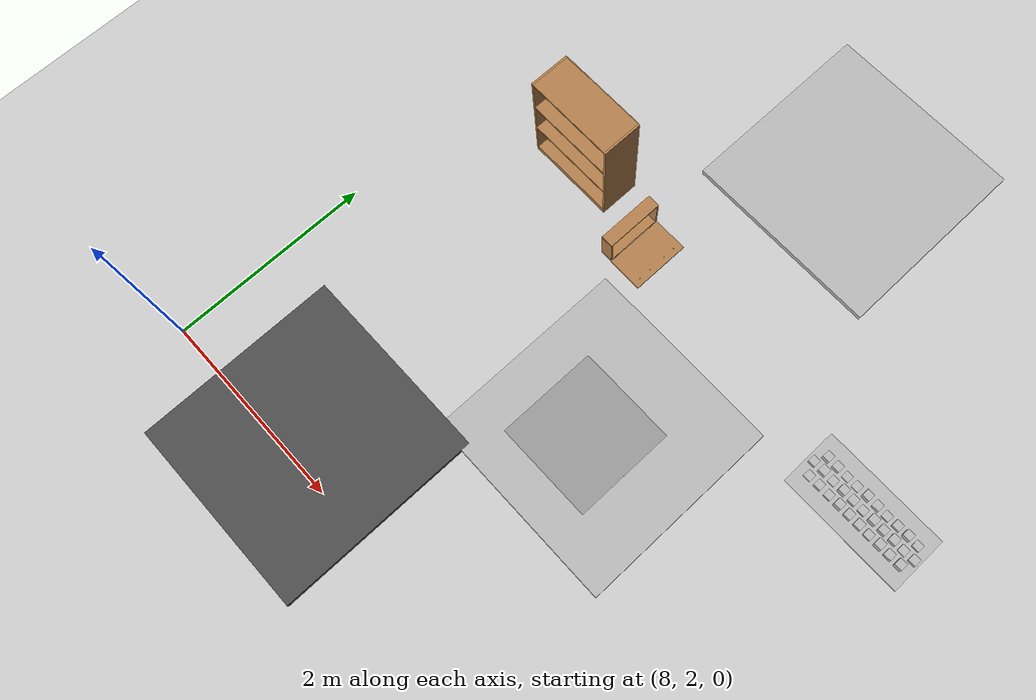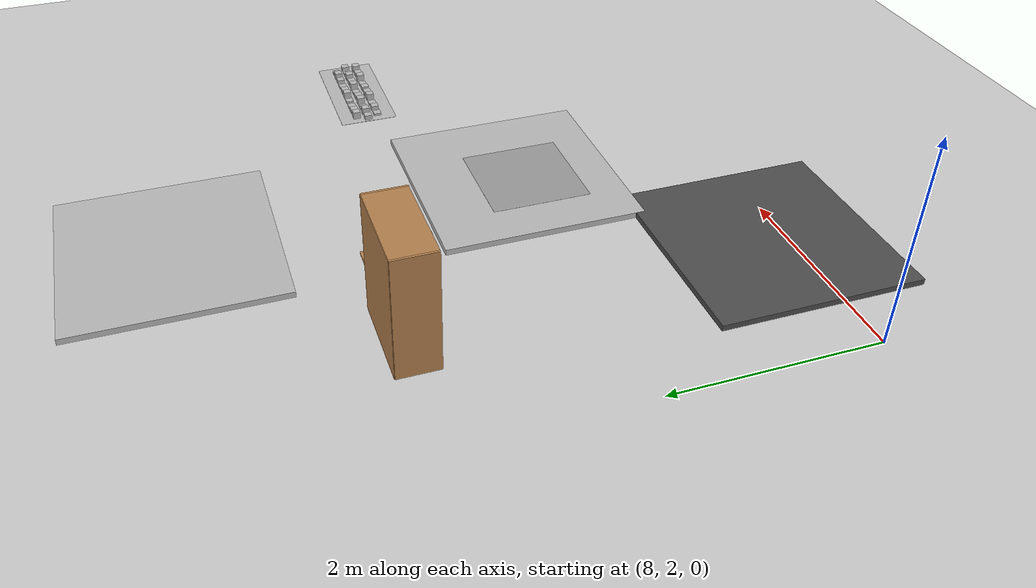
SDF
<sdf version="1.6">
 <world name="default">
  <model name="texture4_0">
   <static>1</static>
   <link name="link">
    <collision name="collision"><geometry><box><size>2 2 0.1</size></box></geometry></collision>
    <visual name="visual">
     <cast_shadows>0</cast_shadows>
     <geometry><box><size>2 2 0.1</size></box></geometry>
     <material>
      <script>
       <uri>model://texture4/materials/scripts</uri>
       <uri>model://texture4/materials/textures</uri>
       <name>vrc/texture4</name>
      </script>
     </material>
    </visual>
   </link>
   <pose>11.2423 4.1124 0 0 -0 0</pose>
  </model>
  <model name="texture1_2">
   <static>1</static>
   <link name="link">
    <collision name="collision"><geometry><box><size>2 2 0.1</size></box></geometry></collision>
    <visual name="visual">
     <cast_shadows>0</cast_shadows>
     <geometry><box><size>2 2 0.1</size></box></geometry>
     <material>
      <script>
       <uri>model://texture1/materials/scripts</uri>
       <uri>model://texture1/materials/textures</uri>
       <name>vrc/texture1</name>
      </script>
     </material>
    </visual>
   </link>
   <pose>11.0808 7.52286 0 0 -0 0</pose>
  </model>
  <model name="unit_box_0">
   <pose>11.1679 3.99809 0.050264 0 -0 0</pose>
   <link name="link">
    <inertial>
     <mass>1</mass>
     <inertia>
      <ixx>0.166667</ixx>
      <ixy>0</ixy>
      <ixz>0</ixz>
      <iyy>0.166667</iyy>
      <iyz>0</iyz>
      <izz>0.166667</izz>
     </inertia>
    </inertial>
    <collision name="collision"><geometry><box><size>1 1 0.000528398</size></box></geometry></collision>
    <visual name="visual">
     <geometry><box><size>1 1 0.000528398</size></box></geometry>
     <material>
      <script><name>Gazebo/Grey</name><uri>file://media/materials/scripts/gazebo.material</uri></script>
     </material>
    </visual>
   </link>
  </model>
  <model name="ground_plane">
   <static>1</static>
   <link name="link">
    <collision name="collision">
     <geometry><plane><normal>0 0 1</normal><size>100 100</size></plane></geometry>
     <surface><friction><ode><mu>100</mu><mu2>50</mu2></ode></friction></surface>
    </collision>
    <visual name="visual">
     <cast_shadows>0</cast_shadows>
     <geometry><plane><normal>0 0 1</normal><size>100 100</size></plane></geometry>
     <material>
      <script><uri>file://media/materials/scripts/gazebo.material</uri><name>Gazebo/Grey</name></script>
     </material>
    </visual>
   </link>
   <pose>-0.49205 0.443924 0 0 -0 0</pose>
  </model>
  <model name="frc2016_roughterrain">
   <static>1</static>
   <link name="link">
    <visual name="platform">
     <pose>0 0 0.08269 0 -0 0</pose>
     <geometry><box><size>1.27 0.5969 0.003175</size></box></geometry>
    </visual>
    <collision name="platform">
     <pose>0 0 0.08269 0 -0 0</pose>
     <geometry><box><size>1.27 0.5969 0.003175</size></box></geometry>
    </collision>
    <visual name="row1_block1_sm">
     <pose>0.51435 0.1143 0.09698 0 -0 0</pose>
     <geometry><box><size>0.0762 0.0762 0.0254</size></box></geometry>
    </visual>
    <collision name="row1_block1_sm">
     <pose>0.51435 0.1143 0.09698 0 -0 0</pose>
     <geometry><box><size>0.0762 0.0762 0.0254</size></box></geometry>
    </collision>
    <visual name="row1_block2_lg">
     <pose>0.40005 0.1143 0.12238 0 -0 0</pose>
     <geometry><box><size>0.0762 0.0762 0.0762</size></box></geometry>
    </visual>
    <collision name="row1_block2_lg">
     <pose>0.40005 0.1143 0.12238 0 -0 0</pose>
     <geometry><box><size>0.0762 0.0762 0.0762</size></box></geometry>
    </collision>
    <visual name="row1_block3_md">
     <pose>0.28575 0.1143 0.10968 0 -0 0</pose>
     <geometry><box><size>0.0762 0.0762 0.0508</size></box></geometry>
    </visual>
    <collision name="row1_block3_md">
     <pose>0.28575 0.1143 0.10968 0 -0 0</pose>
     <geometry><box><size>0.0762 0.0762 0.0508</size></box></geometry>
    </collision>
    <visual name="row1_block4_sm">
     <pose>0.17145 0.1143 0.09698 0 -0 0</pose>
     <geometry><box><size>0.0762 0.0762 0.0254</size></box></geometry>
    </visual>
    <collision name="row1_block4_sm">
     <pose>0.17145 0.1143 0.09698 0 -0 0</pose>
     <geometry><box><size>0.0762 0.0762 0.0254</size></box></geometry>
    </collision>
    <visual name="row1_block5_md">
     <pose>0.05715 0.1143 0.10968 0 -0 0</pose>
     <geometry><box><size>0.0762 0.0762 0.0508</size></box></geometry>
    </visual>
    <collision name="row1_block5_md">
     <pose>0.05715 0.1143 0.10968 0 -0 0</pose>
     <geometry><box><size>0.0762 0.0762 0.0508</size></box></geometry>
    </collision>
    <visual name="row1_block6_lg">
     <pose>-0.05715 0.1143 0.12238 0 -0 0</pose>
     <geometry><box><size>0.0762 0.0762 0.0762</size></box></geometry>
    </visual>
    <collision name="row1_block6_lg">
     <pose>-0.05715 0.1143 0.12238 0 -0 0</pose>
     <geometry><box><size>0.0762 0.0762 0.0762</size></box></geometry>
    </collision>
    <visual name="row1_block7_sm">
     <pose>-0.17145 0.1143 0.09698 0 -0 0</pose>
     <geometry><box><size>0.0762 0.0762 0.0254</size></box></geometry>
    </visual>
    <collision name="row1_block7_sm">
     <pose>-0.17145 0.1143 0.09698 0 -0 0</pose>
     <geometry><box><size>0.0762 0.0762 0.0254</size></box></geometry>
    </collision>
    <visual name="row1_block8_sm">
     <pose>-0.28575 0.1143 0.09698 0 -0 0</pose>
     <geometry><box><size>0.0762 0.0762 0.0254</size></box></geometry>
    </visual>
    <collision name="row1_block8_sm">
     <pose>-0.28575 0.1143 0.09698 0 -0 0</pose>
     <geometry><box><size>0.0762 0.0762 0.0254</size></box></geometry>
    </collision>
    <visual name="row1_block9_md">
     <pose>-0.40005 0.1143 0.10968 0 -0 0</pose>
     <geometry><box><size>0.0762 0.0762 0.0508</size></box></geometry>
    </visual>
    <collision name="row1_block9_md">
     <pose>-0.40005 0.1143 0.10968 0 -0 0</pose>
     <geometry><box><size>0.0762 0.0762 0.0508</size></box></geometry>
    </collision>
    <visual name="row1_block10_lg">
     <pose>-0.51435 0.1143 0.12238 0 -0 0</pose>
     <geometry><box><size>0.0762 0.0762 0.0762</size></box></geometry>
    </visual>
    <collision name="row1_block10_lg">
     <pose>-0.51435 0.1143 0.12238 0 -0 0</pose>
     <geometry><box><size>0.0762 0.0762 0.0762</size></box></geometry>
    </collision>
    <visual name="row2_block1_md">
     <pose>0.5715 0 0.10968 0 -0 0</pose>
     <geometry><box><size>0.0762 0.0762 0.0508</size></box></geometry>
    </visual>
    <collision name="row2_block1_md">
     <pose>0.5715 0 0.10968 0 -0 0</pose>
     <geometry><box><size>0.0762 0.0762 0.0508</size></box></geometry>
    </collision>
    <visual name="row2_block2_sm">
     <pose>0.4572 0 0.09698 0 -0 0</pose>
     <geometry><box><size>0.0762 0.0762 0.0254</size></box></geometry>
    </visual>
    <collision name="row2_block2_sm">
     <pose>0.4572 0 0.09698 0 -0 0</pose>
     <geometry><box><size>0.0762 0.0762 0.0254</size></box></geometry>
    </collision>
    <visual name="row2_block3_lg">
     <pose>0.3429 0 0.12238 0 -0 0</pose>
     <geometry><box><size>0.0762 0.0762 0.0762</size></box></geometry>
    </visual>
    <collision name="row2_block3_lg">
     <pose>0.3429 0 0.12238 0 -0 0</pose>
     <geometry><box><size>0.0762 0.0762 0.0762</size></box></geometry>
    </collision>
    <visual name="row2_block4_md">
     <pose>0.2286 0 0.10968 0 -0 0</pose>
     <geometry><box><size>0.0762 0.0762 0.0508</size></box></geometry>
    </visual>
    <collision name="row2_block4_md">
     <pose>0.2286 0 0.10968 0 -0 0</pose>
     <geometry><box><size>0.0762 0.0762 0.0508</size></box></geometry>
    </collision>
    <visual name="row2_block5_lg">
     <pose>0.1143 0 0.12238 0 -0 0</pose>
     <geometry><box><size>0.0762 0.0762 0.0762</size></box></geometry>
    </visual>
    <collision name="row2_block5_lg">
     <pose>0.1143 0 0.12238 0 -0 0</pose>
     <geometry><box><size>0.0762 0.0762 0.0762</size></box></geometry>
    </collision>
    <visual name="row2_block6_sm">
     <pose>0 0 0.09698 0 -0 0</pose>
     <geometry><box><size>0.0762 0.0762 0.0254</size></box></geometry>
    </visual>
    <collision name="row2_block6_sm">
     <pose>0 0 0.09698 0 -0 0</pose>
     <geometry><box><size>0.0762 0.0762 0.0254</size></box></geometry>
    </collision>
    <visual name="row2_block7_md">
     <pose>-0.1143 0 0.10968 0 -0 0</pose>
     <geometry><box><size>0.0762 0.0762 0.0508</size></box></geometry>
    </visual>
    <collision name="row2_block7_md">
     <pose>-0.1143 0 0.10968 0 -0 0</pose>
     <geometry><box><size>0.0762 0.0762 0.0508</size></box></geometry>
    </collision>
    <visual name="row2_block8_lg">
     <pose>-0.2286 0 0.12238 0 -0 0</pose>
     <geometry><box><size>0.0762 0.0762 0.0762</size></box></geometry>
    </visual>
    <collision name="row2_block8_lg">
     <pose>-0.2286 0 0.12238 0 -0 0</pose>
     <geometry><box><size>0.0762 0.0762 0.0762</size></box></geometry>
    </collision>
    <visual name="row2_block9_sm">
     <pose>-0.3429 0 0.09698 0 -0 0</pose>
     <geometry><box><size>0.0762 0.0762 0.0254</size></box></geometry>
    </visual>
    <collision name="row2_block9_sm">
     <pose>-0.3429 0 0.09698 0 -0 0</pose>
     <geometry><box><size>0.0762 0.0762 0.0254</size></box></geometry>
    </collision>
    <visual name="row2_block10_lg">
     <pose>-0.4572 0 0.12238 0 -0 0</pose>
     <geometry><box><size>0.0762 0.0762 0.0762</size></box></geometry>
    </visual>
    <collision name="row2_block10_lg">
     <pose>-0.4572 0 0.12238 0 -0 0</pose>
     <geometry><box><size>0.0762 0.0762 0.0762</size></box></geometry>
    </collision>
    <visual name="row2_block11_md">
     <pose>-0.5715 0 0.10968 0 -0 0</pose>
     <geometry><box><size>0.0762 0.0762 0.0508</size></box></geometry>
    </visual>
    <collision name="row2_block11_md">
     <pose>-0.5715 0 0.10968 0 -0 0</pose>
     <geometry><box><size>0.0762 0.0762 0.0508</size></box></geometry>
    </collision>
    <visual name="row3_block1_lg">
     <pose>0.51435 -0.1143 0.12238 0 -0 0</pose>
     <geometry><box><size>0.0762 0.0762 0.0762</size></box></geometry>
    </visual>
    <collision name="row3_block1_lg">
     <pose>0.51435 -0.1143 0.12238 0 -0 0</pose>
     <geometry><box><size>0.0762 0.0762 0.0762</size></box></geometry>
    </collision>
    <visual name="row3_block2_md">
     <pose>0.40005 -0.1143 0.10968 0 -0 0</pose>
     <geometry><box><size>0.0762 0.0762 0.0508</size></box></geometry>
    </visual>
    <collision name="row3_block2_md">
     <pose>0.40005 -0.1143 0.10968 0 -0 0</pose>
     <geometry><box><size>0.0762 0.0762 0.0508</size></box></geometry>
    </collision>
    <visual name="row3_block3_lg">
     <pose>0.28575 -0.1143 0.12238 0 -0 0</pose>
     <geometry><box><size>0.0762 0.0762 0.0762</size></box></geometry>
    </visual>
    <collision name="row3_block3_lg">
     <pose>0.28575 -0.1143 0.12238 0 -0 0</pose>
     <geometry><box><size>0.0762 0.0762 0.0762</size></box></geometry>
    </collision>
    <visual name="row3_block4_sm">
     <pose>0.17145 -0.1143 0.09698 0 -0 0</pose>
     <geometry><box><size>0.0762 0.0762 0.0254</size></box></geometry>
    </visual>
    <collision name="row3_block4_sm">
     <pose>0.17145 -0.1143 0.09698 0 -0 0</pose>
     <geometry><box><size>0.0762 0.0762 0.0254</size></box></geometry>
    </collision>
    <visual name="row3_block5_md">
     <pose>0.05715 -0.1143 0.10968 0 -0 0</pose>
     <geometry><box><size>0.0762 0.0762 0.0508</size></box></geometry>
    </visual>
    <collision name="row3_block5_md">
     <pose>0.05715 -0.1143 0.10968 0 -0 0</pose>
     <geometry><box><size>0.0762 0.0762 0.0508</size></box></geometry>
    </collision>
    <visual name="row3_block6_md">
     <pose>-0.05715 -0.1143 0.10968 0 -0 0</pose>
     <geometry><box><size>0.0762 0.0762 0.0508</size></box></geometry>
    </visual>
    <collision name="row3_block6_md">
     <pose>-0.05715 -0.1143 0.10968 0 -0 0</pose>
     <geometry><box><size>0.0762 0.0762 0.0508</size></box></geometry>
    </collision>
    <visual name="row3_block7_lg">
     <pose>-0.17145 -0.1143 0.12238 0 -0 0</pose>
     <geometry><box><size>0.0762 0.0762 0.0762</size></box></geometry>
    </visual>
    <collision name="row3_block7_lg">
     <pose>-0.17145 -0.1143 0.12238 0 -0 0</pose>
     <geometry><box><size>0.0762 0.0762 0.0762</size></box></geometry>
    </collision>
    <visual name="row3_block8_sm">
     <pose>-0.28575 -0.1143 0.09698 0 -0 0</pose>
     <geometry><box><size>0.0762 0.0762 0.0254</size></box></geometry>
    </visual>
    <collision name="row3_block8_sm">
     <pose>-0.28575 -0.1143 0.09698 0 -0 0</pose>
     <geometry><box><size>0.0762 0.0762 0.0254</size></box></geometry>
    </collision>
    <visual name="row3_block9_md">
     <pose>-0.40005 -0.1143 0.10968 0 -0 0</pose>
     <geometry><box><size>0.0762 0.0762 0.0508</size></box></geometry>
    </visual>
    <collision name="row3_block9_md">
     <pose>-0.40005 -0.1143 0.10968 0 -0 0</pose>
     <geometry><box><size>0.0762 0.0762 0.0508</size></box></geometry>
    </collision>
    <visual name="row3_block10_sm">
     <pose>-0.51435 -0.1143 0.09698 0 -0 0</pose>
     <geometry><box><size>0.0762 0.0762 0.0254</size></box></geometry>
    </visual>
    <collision name="row3_block10_sm">
     <pose>-0.51435 -0.1143 0.09698 0 -0 0</pose>
     <geometry><box><size>0.0762 0.0762 0.0254</size></box></geometry>
    </collision>
   </link>
   <pose>13.2662 5.24814 0 0 -0 0</pose>
  </model>
  <model name="asphalt_plane">
   <static>1</static>
   <link name="link">
    <collision name="collision"><geometry><box><size>2 2 0.1</size></box></geometry></collision>
    <visual name="visual">
     <cast_shadows>0</cast_shadows>
     <geometry><box><size>2 2 0.1</size></box></geometry>
     <material>
      <script>
       <uri>model://texture3/materials/scripts</uri>
       <uri>model://texture3/materials/textures</uri>
       <name>vrc/asphalt</name>
      </script>
     </material>
    </visual>
   </link>
   <pose>9.54454 2.20363 0 0 -0 0</pose>
  </model>
  <model name="wooden_case_0">
   <link name="base">
    <pose>0 0 0.024 0 -0 0</pose>
    <inertial>
     <pose>-0.022184 0 0.171592 0 -0 0</pose>
     <mass>3.96264</mass>
     <inertia>
      <ixx>0.213536</ixx>
      <ixy>0</ixy>
      <ixz>0.000779377</ixz>
      <iyy>0.0708943</iyy>
      <iyz>0</iyz>
      <izz>0.154604</izz>
     </inertia>
    </inertial>
    <collision name="collision_back">
     <pose>-0.053975 0 0.1778 0 -0 0</pose>
     <geometry><box><size>0.01905 0.5461 0.3175</size></box></geometry>
     <surface>
      <contact>
       <poissons_ratio>0.347</poissons_ratio>
       <elastic_modulus>8.8e+09</elastic_modulus>
       <ode><kp>100000</kp><kd>100</kd><max_vel>100</max_vel><min_depth>0.001</min_depth></ode>
      </contact>
      <friction>
       <torsional>
        <coefficient>1</coefficient>
        <use_patch_radius>0</use_patch_radius>
        <surface_radius>0.01</surface_radius>
       </torsional>
      </friction>
     </surface>
    </collision>
    <visual name="visual_back">
     <pose>-0.053975 0 0.1778 0 -0 0</pose>
     <geometry><box><size>0.01905 0.5461 0.3175</size></box></geometry>
     <material>
      <script><uri>file://media/materials/scripts/gazebo.material</uri><name>Gazebo/Wood</name></script>
     </material>
    </visual>
    <collision name="collision_bottom">
     <pose>0 0 0.009525 0 -0 0</pose>
     <geometry><box><size>0.127 0.5842 0.01905</size></box></geometry>
     <surface>
      <contact>
       <poissons_ratio>0.347</poissons_ratio>
       <elastic_modulus>8.8e+09</elastic_modulus>
       <ode><kp>100000</kp><kd>100</kd><max_vel>100</max_vel><min_depth>0.001</min_depth></ode>
      </contact>
      <friction>
       <torsional>
        <coefficient>1</coefficient>
        <use_patch_radius>0</use_patch_radius>
        <surface_radius>0.01</surface_radius>
       </torsional>
      </friction>
     </surface>
    </collision>
    <visual name="visual_bottom">
     <pose>0 0 0.009525 0 -0 0</pose>
     <geometry><box><size>0.127 0.5842 0.01905</size></box></geometry>
     <material>
      <script><uri>file://media/materials/scripts/gazebo.material</uri><name>Gazebo/Wood</name></script>
     </material>
    </visual>
    <collision name="collision_top">
     <pose>0 0 0.346075 0 -0 0</pose>
     <geometry><box><size>0.127 0.5842 0.01905</size></box></geometry>
     <surface>
      <contact>
       <poissons_ratio>0.347</poissons_ratio>
       <elastic_modulus>8.8e+09</elastic_modulus>
       <ode><kp>100000</kp><kd>100</kd><max_vel>100</max_vel><min_depth>0.001</min_depth></ode>
      </contact>
      <friction>
       <torsional>
        <coefficient>1</coefficient>
        <use_patch_radius>0</use_patch_radius>
        <surface_radius>0.01</surface_radius>
       </torsional>
      </friction>
     </surface>
    </collision>
    <visual name="visual_top">
     <pose>0 0 0.346075 0 -0 0</pose>
     <geometry><box><size>0.127 0.5842 0.01905</size></box></geometry>
     <material>
      <script><uri>file://media/materials/scripts/gazebo.material</uri><name>Gazebo/Wood</name></script>
     </material>
    </visual>
    <collision name="collision_left">
     <pose>0 -0.282575 0.1778 0 -0 0</pose>
     <geometry><box><size>0.127 0.01905 0.3175</size></box></geometry>
     <surface>
      <contact>
       <poissons_ratio>0.347</poissons_ratio>
       <elastic_modulus>8.8e+09</elastic_modulus>
       <ode><kp>100000</kp><kd>100</kd><max_vel>100</max_vel><min_depth>0.001</min_depth></ode>
      </contact>
      <friction>
       <torsional>
        <coefficient>1</coefficient>
        <use_patch_radius>0</use_patch_radius>
        <surface_radius>0.01</surface_radius>
       </torsional>
      </friction>
     </surface>
    </collision>
    <visual name="visual_left">
     <pose>0 -0.282575 0.1778 0 -0 0</pose>
     <geometry><box><size>0.127 0.01905 0.3175</size></box></geometry>
     <material>
      <script><uri>file://media/materials/scripts/gazebo.material</uri><name>Gazebo/Wood</name></script>
     </material>
    </visual>
    <collision name="collision_right">
     <pose>0 0.282575 0.1778 0 -0 0</pose>
     <geometry><box><size>0.127 0.01905 0.3175</size></box></geometry>
     <surface>
      <contact>
       <poissons_ratio>0.347</poissons_ratio>
       <elastic_modulus>8.8e+09</elastic_modulus>
       <ode><kp>100000</kp><kd>100</kd><max_vel>100</max_vel><min_depth>0.001</min_depth></ode>
      </contact>
      <friction>
       <torsional>
        <coefficient>1</coefficient>
        <use_patch_radius>0</use_patch_radius>
        <surface_radius>0.01</surface_radius>
       </torsional>
      </friction>
     </surface>
    </collision>
    <visual name="visual_right">
     <pose>0 0.282575 0.1778 0 -0 0</pose>
     <geometry><box><size>0.127 0.01905 0.3175</size></box></geometry>
     <material>
      <script><uri>file://media/materials/scripts/gazebo.material</uri><name>Gazebo/Wood</name></script>
     </material>
    </visual>
    <collision name="collision_block_left">
     <pose>0.0095 -0.2151 -0.012 0 -0 0</pose>
     <geometry><box><size>0.108 0.05 0.024</size></box></geometry>
     <surface>
      <contact>
       <poissons_ratio>0.347</poissons_ratio>
       <elastic_modulus>8.8e+09</elastic_modulus>
       <ode><kp>100000</kp><kd>100</kd><max_vel>100</max_vel><min_depth>0.001</min_depth></ode>
      </contact>
      <friction>
       <torsional>
        <coefficient>1</coefficient>
        <use_patch_radius>0</use_patch_radius>
        <surface_radius>0.01</surface_radius>
       </torsional>
      </friction>
     </surface>
    </collision>
    <visual name="visual_block_left">
     <pose>0.0095 -0.2151 -0.012 0 -0 0</pose>
     <geometry><box><size>0.108 0.05 0.024</size></box></geometry>
     <material>
      <script><uri>file://media/materials/scripts/gazebo.material</uri><name>Gazebo/Wood</name></script>
     </material>
    </visual>
    <collision name="collision_block_right">
     <pose>0.0095 0.2151 -0.012 0 -0 0</pose>
     <geometry><box><size>0.108 0.05 0.024</size></box></geometry>
     <surface>
      <contact>
       <poissons_ratio>0.347</poissons_ratio>
       <elastic_modulus>8.8e+09</elastic_modulus>
       <ode><kp>100000</kp><kd>100</kd><max_vel>100</max_vel><min_depth>0.001</min_depth></ode>
      </contact>
      <friction>
       <torsional>
        <coefficient>1</coefficient>
        <use_patch_radius>0</use_patch_radius>
        <surface_radius>0.01</surface_radius>
       </torsional>
      </friction>
     </surface>
    </collision>
    <visual name="visual_block_right">
     <pose>0.0095 0.2151 -0.012 0 -0 0</pose>
     <geometry><box><size>0.108 0.05 0.024</size></box></geometry>
     <material>
      <script><uri>file://media/materials/scripts/gazebo.material</uri><name>Gazebo/Wood</name></script>
     </material>
    </visual>
   </link>
   <link name="lid">
    <pose>0.243775 0 0.009525 0 -0 0</pose>
    <inertial>
     <mass>1.97874</mass>
     <inertia>
      <ixx>0.0563367</ixx>
      <ixy>0</ixy>
      <ixz>0</ixz>
      <iyy>0.020911</iyy>
      <iyz>0</iyz>
      <izz>0.0771281</izz>
     </inertia>
    </inertial>
    <collision name="collision">
     <geometry><box><size>0.3556 0.5842 0.01905</size></box></geometry>
     <surface>
      <contact>
       <poissons_ratio>0.347</poissons_ratio>
       <elastic_modulus>8.8e+09</elastic_modulus>
       <ode><kp>100000</kp><kd>100</kd><max_vel>100</max_vel><min_depth>0.001</min_depth></ode>
      </contact>
      <friction>
       <torsional>
        <coefficient>1</coefficient>
        <use_patch_radius>0</use_patch_radius>
        <surface_radius>0.01</surface_radius>
       </torsional>
      </friction>
     </surface>
    </collision>
    <visual name="visual">
     <geometry><box><size>0.3556 0.5842 0.01905</size></box></geometry>
     <material>
      <script><uri>file://media/materials/scripts/gazebo.material</uri><name>Gazebo/Wood</name></script>
     </material>
    </visual>
    <visual name="tee_nut_1">
     <pose>0.122 -0.216 0 0 -0 0</pose>
     <geometry><cylinder><radius>0.00635</radius><length>0.0192405</length></cylinder></geometry>
     <material>
      <script><uri>file://media/materials/scripts/gazebo.material</uri><name>Gazebo/Grey</name></script>
     </material>
    </visual>
    <visual name="tee_nut_2">
     <pose>0.122 -0.088 0 0 -0 0</pose>
     <geometry><cylinder><radius>0.00635</radius><length>0.0192405</length></cylinder></geometry>
     <material>
      <script><uri>file://media/materials/scripts/gazebo.material</uri><name>Gazebo/Grey</name></script>
     </material>
    </visual>
    <visual name="tee_nut_3">
     <pose>0.122 0.088 0 0 -0 0</pose>
     <geometry><cylinder><radius>0.00635</radius><length>0.0192405</length></cylinder></geometry>
     <material>
      <script><uri>file://media/materials/scripts/gazebo.material</uri><name>Gazebo/Grey</name></script>
     </material>
    </visual>
    <visual name="tee_nut_4">
     <pose>0.122 0.216 0 0 -0 0</pose>
     <geometry><cylinder><radius>0.00635</radius><length>0.0192405</length></cylinder></geometry>
     <material>
      <script><uri>file://media/materials/scripts/gazebo.material</uri><name>Gazebo/Grey</name></script>
     </material>
    </visual>
   </link>
   <joint name="lid_hinge" type="revolute">
    <pose>-0.1778 0 0.01905 0 -0 0</pose>
    <parent>base</parent>
    <child>lid</child>
    <axis>
     <xyz>0 1 0</xyz>
     <limit><upper>0.523599</upper><lower>-1.5708</lower></limit>
     <use_parent_model_frame>0</use_parent_model_frame>
     <dynamics><spring_reference>0</spring_reference><spring_stiffness>0</spring_stiffness></dynamics>
    </axis>
   </joint>
   <pose>10.0839 5.56428 -0.001058 0 -0.000456 0</pose>
  </model>
  <model name="bookshelf">
   <static>1</static>
   <link name="link">
    <inertial><mass>1</mass></inertial>
    <collision name="back">
     <pose>0 0.005 0.6 0 -0 0</pose>
     <geometry><box><size>0.9 0.01 1.2</size></box></geometry>
    </collision>
    <visual name="visual1">
     <pose>0 0.005 0.6 0 -0 0</pose>
     <geometry><box><size>0.9 0.01 1.2</size></box></geometry>
     <material>
      <script><uri>file://media/materials/scripts/gazebo.material</uri><name>Gazebo/Wood</name></script>
     </material>
    </visual>
    <collision name="left_side">
     <pose>0.45 -0.195 0.6 0 -0 0</pose>
     <geometry><box><size>0.02 0.4 1.2</size></box></geometry>
    </collision>
    <visual name="visual2">
     <pose>0.45 -0.195 0.6 0 -0 0</pose>
     <geometry><box><size>0.02 0.4 1.2</size></box></geometry>
     <material>
      <script><uri>file://media/materials/scripts/gazebo.material</uri><name>Gazebo/Wood</name></script>
     </material>
    </visual>
    <collision name="right_side">
     <pose>-0.45 -0.195 0.6 0 -0 0</pose>
     <geometry><box><size>0.02 0.4 1.2</size></box></geometry>
    </collision>
    <visual name="visual3">
     <pose>-0.45 -0.195 0.6 0 -0 0</pose>
     <geometry><box><size>0.02 0.4 1.2</size></box></geometry>
     <material>
      <script><uri>file://media/materials/scripts/gazebo.material</uri><name>Gazebo/Wood</name></script>
     </material>
    </visual>
    <collision name="bottom">
     <pose>0 -0.195 0.03 0 -0 0</pose>
     <geometry><box><size>0.88 0.4 0.06</size></box></geometry>
    </collision>
    <visual name="visual4">
     <pose>0 -0.195 0.03 0 -0 0</pose>
     <geometry><box><size>0.88 0.4 0.06</size></box></geometry>
     <material>
      <script><uri>file://media/materials/scripts/gazebo.material</uri><name>Gazebo/Wood</name></script>
     </material>
    </visual>
    <collision name="top">
     <pose>0 -0.195 1.19 0 -0 0</pose>
     <geometry><box><size>0.88 0.4 0.02</size></box></geometry>
    </collision>
    <visual name="visual5">
     <pose>0 -0.195 1.19 0 -0 0</pose>
     <geometry><box><size>0.88 0.4 0.02</size></box></geometry>
     <material>
      <script><uri>file://media/materials/scripts/gazebo.material</uri><name>Gazebo/Wood</name></script>
     </material>
    </visual>
    <collision name="low_shelf">
     <pose>0 -0.195 0.43 0 -0 0</pose>
     <geometry><box><size>0.88 0.4 0.02</size></box></geometry>
    </collision>
    <visual name="visual6">
     <pose>0 -0.195 0.43 0 -0 0</pose>
     <geometry><box><size>0.88 0.4 0.02</size></box></geometry>
     <material>
      <script><uri>file://media/materials/scripts/gazebo.material</uri><name>Gazebo/Wood</name></script>
     </material>
    </visual>
    <collision name="high_shelf">
     <pose>0 -0.195 0.8 0 -0 0</pose>
     <geometry><box><size>0.88 0.4 0.02</size></box></geometry>
    </collision>
    <visual name="visual7">
     <pose>0 -0.195 0.8 0 -0 0</pose>
     <geometry><box><size>0.88 0.4 0.02</size></box></geometry>
     <material>
      <script><uri>file://media/materials/scripts/gazebo.material</uri><name>Gazebo/Wood</name></script>
     </material>
    </visual>
   </link>
   <pose>9.28311 5.95871 0 0 -0 0</pose>
  </model>
 </world>
</sdf>
